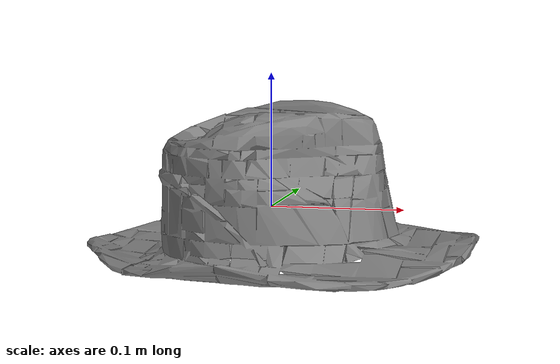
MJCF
<mujoco model="hat_DPC_Handmade_Hat_Brown_M">
  <default>
    <default class="visual">
      <geom group="2" type="mesh" contype="0" conaffinity="0" />
    </default>
    <default class="collision">
      <geom group="3" type="mesh" />
    </default>
  </default>
  <asset>
    <mesh file="hat_DPC_Handmade_Hat_Brown_M.stl" />
    <mesh file="hat_DPC_Handmade_Hat_Brown_M_collision_0.stl" />
    <mesh file="hat_DPC_Handmade_Hat_Brown_M_collision_1.stl" />
    <mesh file="hat_DPC_Handmade_Hat_Brown_M_collision_2.stl" />
    <mesh file="hat_DPC_Handmade_Hat_Brown_M_collision_3.stl" />
    <mesh file="hat_DPC_Handmade_Hat_Brown_M_collision_4.stl" />
    <mesh file="hat_DPC_Handmade_Hat_Brown_M_collision_5.stl" />
    <mesh file="hat_DPC_Handmade_Hat_Brown_M_collision_6.stl" />
    <mesh file="hat_DPC_Handmade_Hat_Brown_M_collision_7.stl" />
    <mesh file="hat_DPC_Handmade_Hat_Brown_M_collision_8.stl" />
    <mesh file="hat_DPC_Handmade_Hat_Brown_M_collision_9.stl" />
    <mesh file="hat_DPC_Handmade_Hat_Brown_M_collision_10.stl" />
    <mesh file="hat_DPC_Handmade_Hat_Brown_M_collision_11.stl" />
    <mesh file="hat_DPC_Handmade_Hat_Brown_M_collision_12.stl" />
    <mesh file="hat_DPC_Handmade_Hat_Brown_M_collision_13.stl" />
    <mesh file="hat_DPC_Handmade_Hat_Brown_M_collision_14.stl" />
    <mesh file="hat_DPC_Handmade_Hat_Brown_M_collision_15.stl" />
  </asset>
  <worldbody>
    <body name="hat_DPC_Handmade_Hat_Brown_M">
      <geom mesh="hat_DPC_Handmade_Hat_Brown_M" class="visual" />
      <geom mesh="hat_DPC_Handmade_Hat_Brown_M_collision_0" class="collision" />
      <geom mesh="hat_DPC_Handmade_Hat_Brown_M_collision_1" class="collision" />
      <geom mesh="hat_DPC_Handmade_Hat_Brown_M_collision_2" class="collision" />
      <geom mesh="hat_DPC_Handmade_Hat_Brown_M_collision_3" class="collision" />
      <geom mesh="hat_DPC_Handmade_Hat_Brown_M_collision_4" class="collision" />
      <geom mesh="hat_DPC_Handmade_Hat_Brown_M_collision_5" class="collision" />
      <geom mesh="hat_DPC_Handmade_Hat_Brown_M_collision_6" class="collision" />
      <geom mesh="hat_DPC_Handmade_Hat_Brown_M_collision_7" class="collision" />
      <geom mesh="hat_DPC_Handmade_Hat_Brown_M_collision_8" class="collision" />
      <geom mesh="hat_DPC_Handmade_Hat_Brown_M_collision_9" class="collision" />
      <geom mesh="hat_DPC_Handmade_Hat_Brown_M_collision_10" class="collision" />
      <geom mesh="hat_DPC_Handmade_Hat_Brown_M_collision_11" class="collision" />
      <geom mesh="hat_DPC_Handmade_Hat_Brown_M_collision_12" class="collision" />
      <geom mesh="hat_DPC_Handmade_Hat_Brown_M_collision_13" class="collision" />
      <geom mesh="hat_DPC_Handmade_Hat_Brown_M_collision_14" class="collision" />
      <geom mesh="hat_DPC_Handmade_Hat_Brown_M_collision_15" class="collision" />
    </body>
  </worldbody>
</mujoco>
